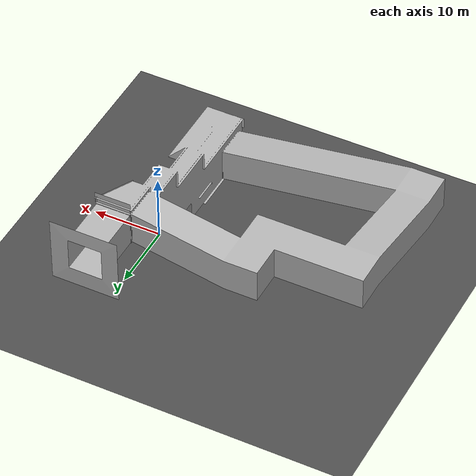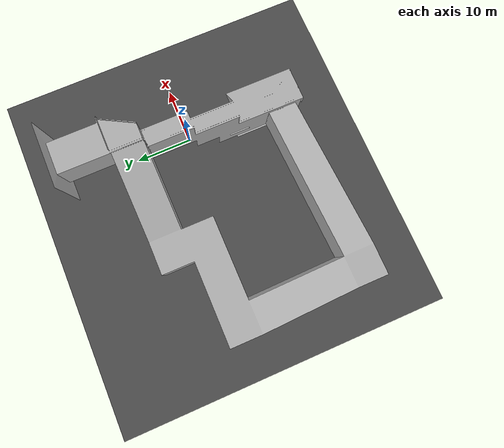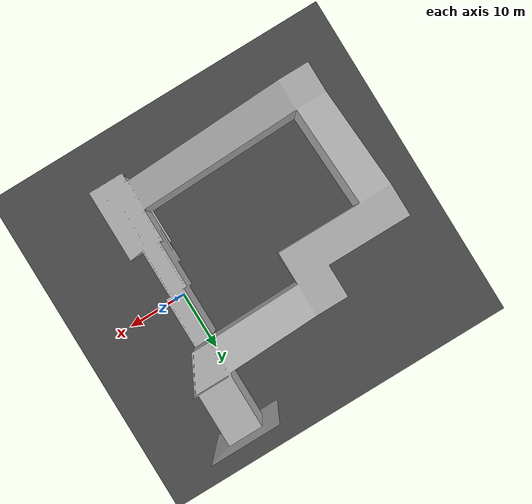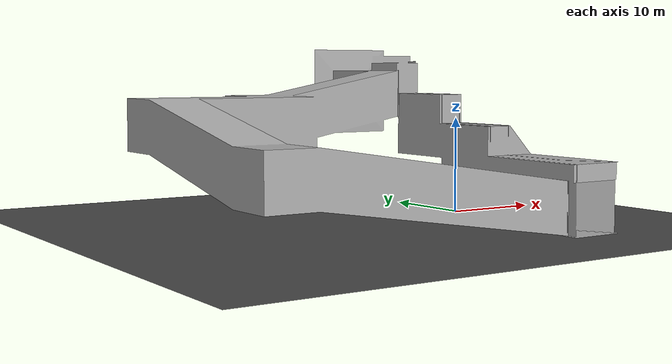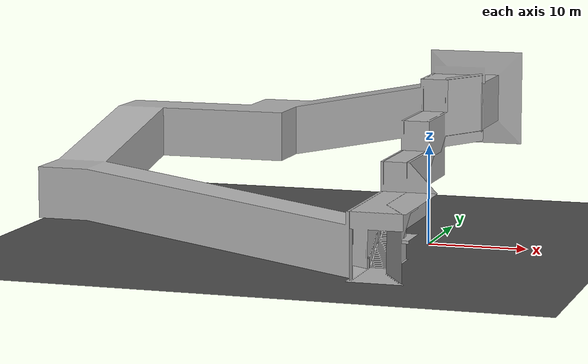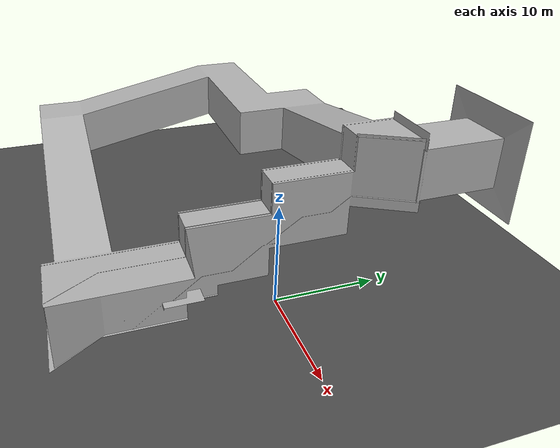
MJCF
<?xml version="1.0"?>
<mujoco model="stairwell">
  <compiler meshdir="stairwell.xml.assets" angle="radian" autolimits="true"/>
  <option timestep="0.002" gravity="0 0 -9.81"/>
  <default>
    <geom rgba="0.7 0.7 0.7 1" condim="3" friction="1.0 0.05 0.0001"/>
  </default>
  <asset>
    <texture type="skybox" builtin="gradient" rgb1="0.4 0.6 0.8" rgb2="0 0 0" width="256" height="256"/>
    <mesh name="Urban_Stairwell_Platform_Centered_base_0" file="Urban_Stairwell_Platform_Centered_base_0.stl" refpos="0 0 0" refquat="1 0 0 0"/>
  </asset>
  <worldbody>
    <light pos="0 0 30" directional="true"/>
    <geom name="ground" type="plane" size="100 100 0.1" rgba="0.3 0.3 0.3 1"/>
    <body name="Urban_Stairwell_Platform_Centered" pos="0.0000 0.0000 0.0000" quat="1.000000 0.000000 0.000000 0.000000">
      <geom type="mesh" mesh="Urban_Stairwell_Platform_Centered_base_0" pos="0.0000 0.0000 -1.7000" quat="1.000000 0.000000 0.000000 0.000000"/>
    </body>
    <!-- Spawn your Go2 / Go2W include below.  Default Z=0.5 -->
  </worldbody>
</mujoco>
